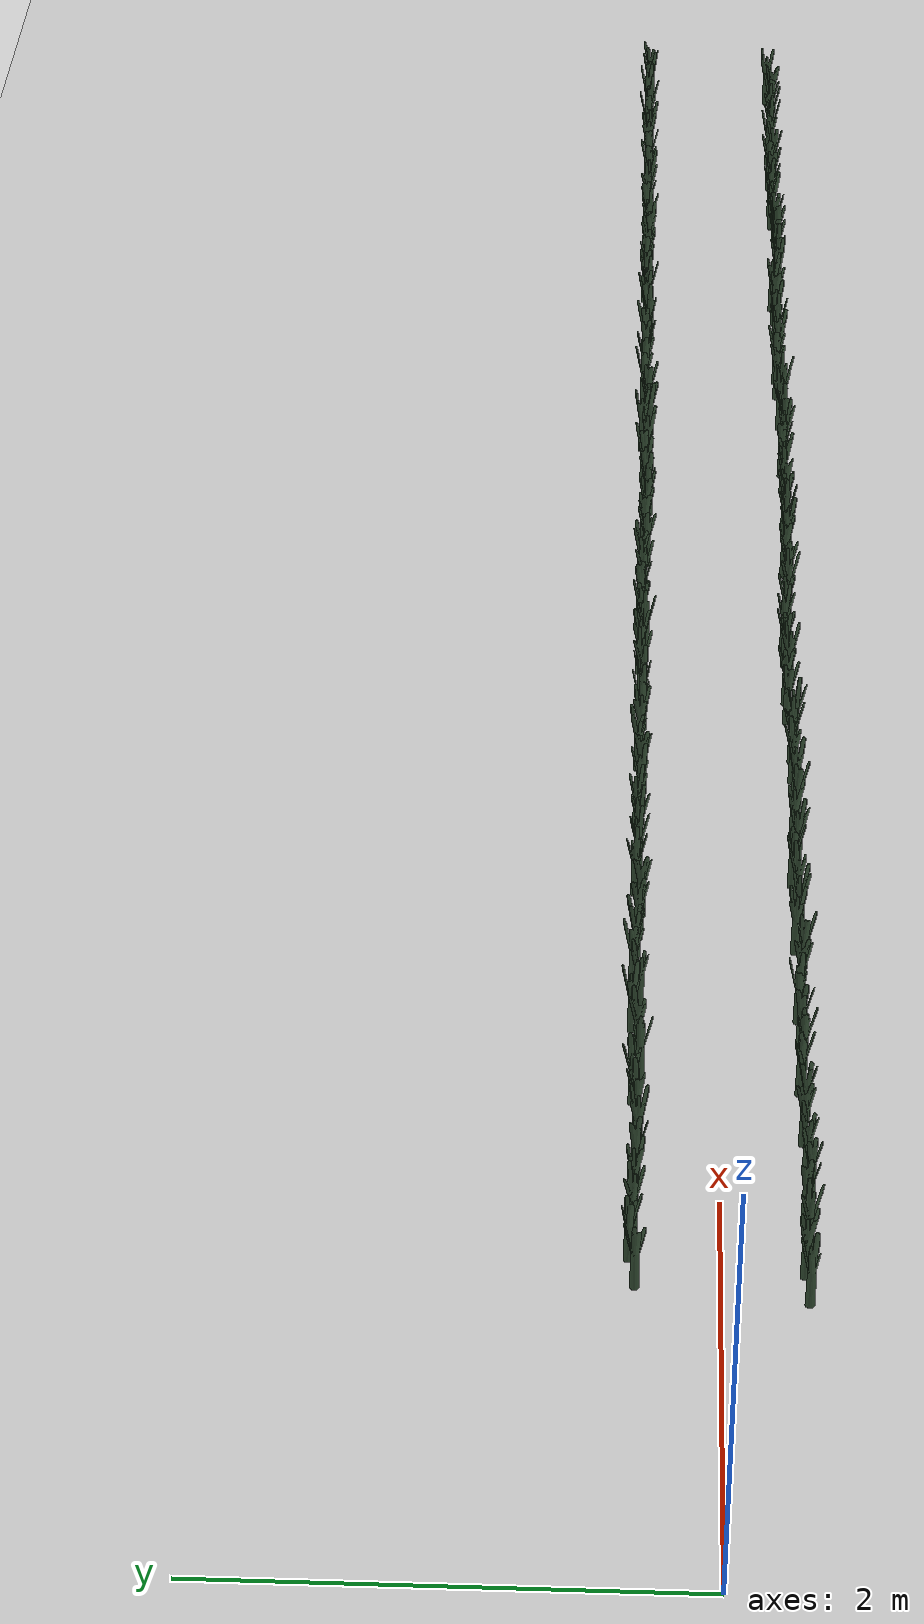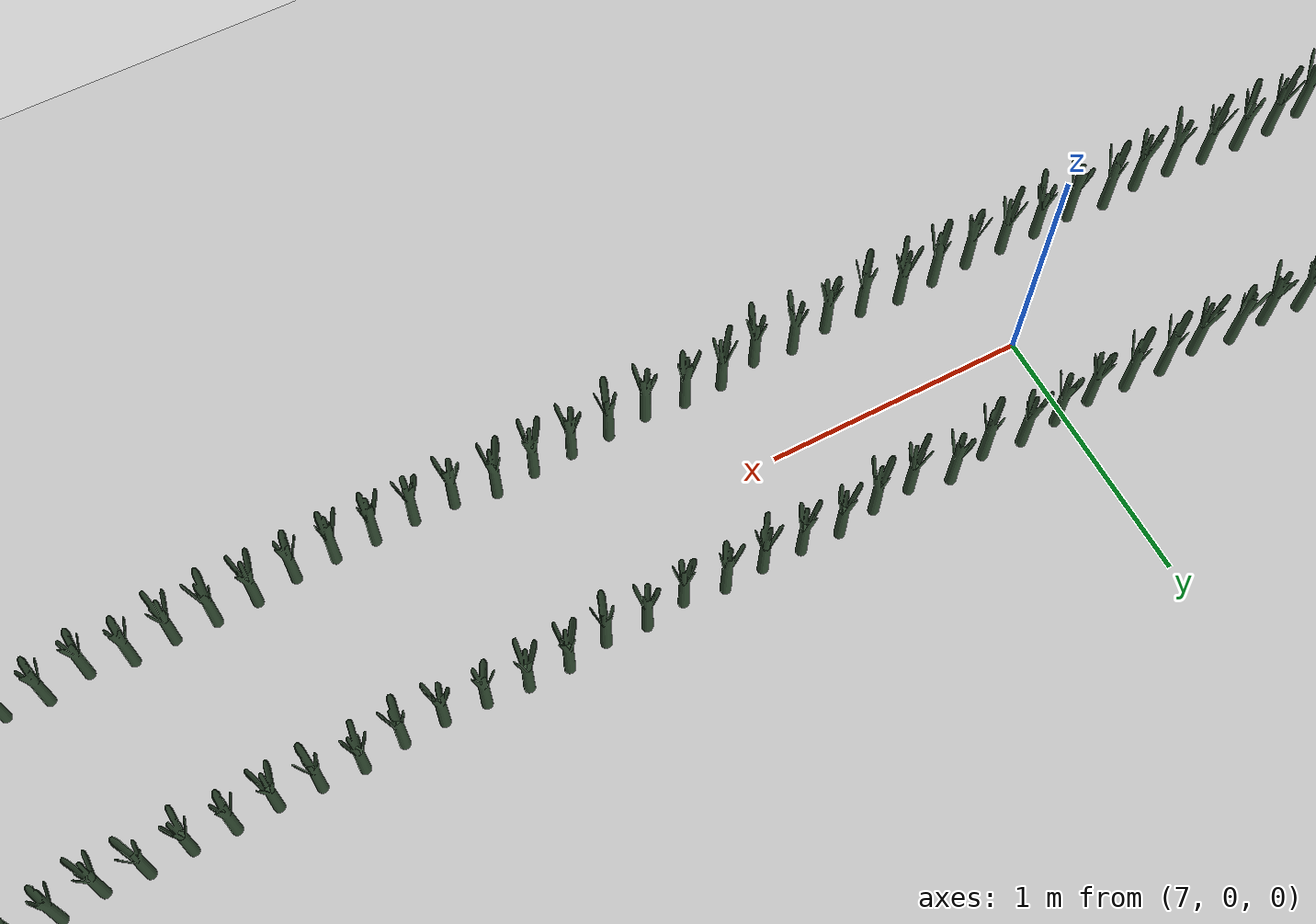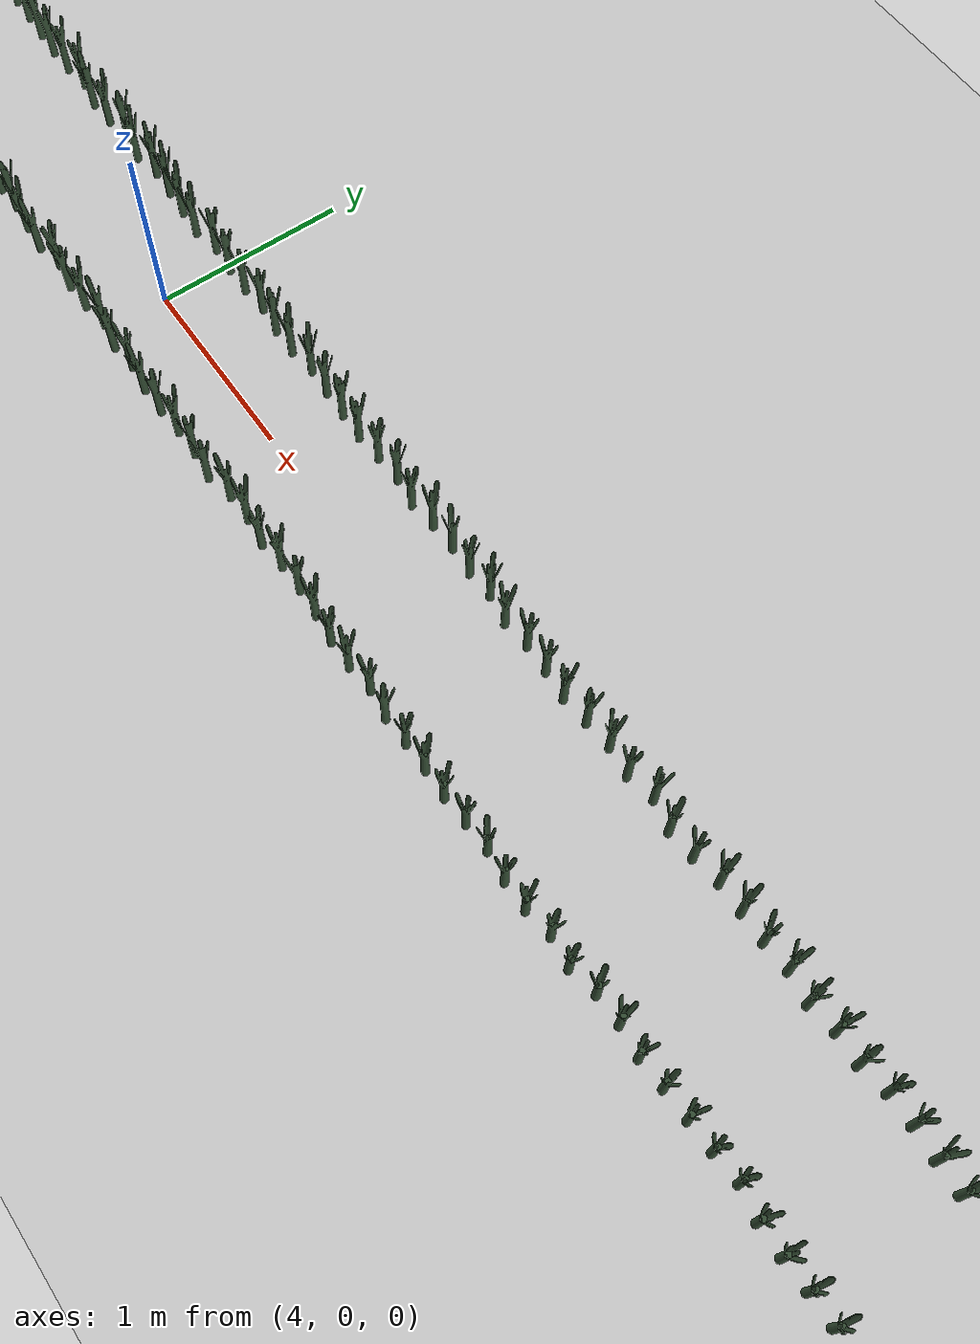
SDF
<sdf version="1.6">
 <world name="default">
  <light name="sun" type="directional">
   <pose>0 0 10 0 -0 0</pose>
   <diffuse>0.5 0.5 0.5 1</diffuse>
   <specular>0.1 0.1 0.1 1</specular>
   <attenuation>
    <range>1000</range>
    <constant>0.9</constant>
    <linear>0.01</linear>
    <quadratic>0.001</quadratic>
   </attenuation>
   <direction>0.9 0.5 -1</direction>
  </light>
  <scene><background>130 200 255 1</background><ambient>130 140 140 1</ambient></scene>
  <include><uri>model://dirt_plane</uri></include>
  <include><uri>model://Leek</uri><pose>1.500000 0.340419 0.15 0 0 -86.226866</pose><static>0</static></include>
  <include><uri>model://Leek</uri><pose>1.650000 0.366421 0.15 0 0 147.786815</pose><static>0</static></include>
  <include><uri>model://Leek</uri><pose>1.800000 0.352654 0.15 0 0 23.890088</pose><static>0</static></include>
  <include><uri>model://Leek</uri><pose>1.950000 0.349032 0.15 0 0 -8.709346</pose><static>0</static></include>
  <include><uri>model://Leek</uri><pose>2.100000 0.342613 0.15 0 0 -66.486384</pose><static>0</static></include>
  <include>
   <uri>model://Leek</uri>
   <pose>2.250000 0.335938 0.15 0 0 -126.556728</pose>
   <static>0</static>
  </include>
  <include><uri>model://Leek</uri><pose>2.400000 0.340957 0.15 0 0 -81.386220</pose><static>0</static></include>
  <include><uri>model://Leek</uri><pose>2.550000 0.359812 0.15 0 0 88.308858</pose><static>0</static></include>
  <include>
   <uri>model://Leek</uri>
   <pose>2.700000 0.332181 0.15 0 0 -160.366901</pose>
   <static>0</static>
  </include>
  <include><uri>model://Leek</uri><pose>2.850000 0.340988 0.15 0 0 -81.103529</pose><static>0</static></include>
  <include><uri>model://Leek</uri><pose>3.000000 0.368100 0.15 0 0 162.902319</pose><static>0</static></include>
  <include><uri>model://Leek</uri><pose>3.150000 0.338921 0.15 0 0 -99.714993</pose><static>0</static></include>
  <include><uri>model://Leek</uri><pose>3.300000 0.366898 0.15 0 0 152.084495</pose><static>0</static></include>
  <include><uri>model://Leek</uri><pose>3.450000 0.357789 0.15 0 0 70.102363</pose><static>0</static></include>
  <include><uri>model://Leek</uri><pose>3.600000 0.346779 0.15 0 0 -28.993297</pose><static>0</static></include>
  <include>
   <uri>model://Leek</uri>
   <pose>3.750000 0.336300 0.15 0 0 -123.302862</pose>
   <static>0</static>
  </include>
  <include><uri>model://Leek</uri><pose>3.900000 0.364470 0.15 0 0 130.232264</pose><static>0</static></include>
  <include><uri>model://Leek</uri><pose>4.050000 0.353276 0.15 0 0 29.484671</pose><static>0</static></include>
  <include><uri>model://Leek</uri><pose>4.200000 0.351169 0.15 0 0 10.521040</pose><static>0</static></include>
  <include><uri>model://Leek</uri><pose>4.350000 0.362327 0.15 0 0 110.944592</pose><static>0</static></include>
  <include><uri>model://Leek</uri><pose>4.500000 0.345767 0.15 0 0 -38.099989</pose><static>0</static></include>
  <include><uri>model://Leek</uri><pose>4.650000 0.342582 0.15 0 0 -66.758920</pose><static>0</static></include>
  <include><uri>model://Leek</uri><pose>4.800000 0.361963 0.15 0 0 107.666447</pose><static>0</static></include>
  <include><uri>model://Leek</uri><pose>4.950000 0.352679 0.15 0 0 24.115165</pose><static>0</static></include>
  <include><uri>model://Leek</uri><pose>5.100000 0.345795 0.15 0 0 -37.843429</pose><static>0</static></include>
  <include><uri>model://Leek</uri><pose>5.250000 0.340217 0.15 0 0 -88.044368</pose><static>0</static></include>
  <include><uri>model://Leek</uri><pose>5.400000 0.352646 0.15 0 0 23.815229</pose><static>0</static></include>
  <include><uri>model://Leek</uri><pose>5.550000 0.361056 0.15 0 0 99.507198</pose><static>0</static></include>
  <include>
   <uri>model://Leek</uri>
   <pose>5.700000 0.338654 0.15 0 0 -102.110928</pose>
   <static>0</static>
  </include>
  <include><uri>model://Leek</uri><pose>5.850000 0.357208 0.15 0 0 64.867580</pose><static>0</static></include>
  <include><uri>model://Leek</uri><pose>6.000000 0.362176 0.15 0 0 109.580599</pose><static>0</static></include>
  <include><uri>model://Leek</uri><pose>6.150000 0.351253 0.15 0 0 11.273023</pose><static>0</static></include>
  <include><uri>model://Leek</uri><pose>6.300000 0.361247 0.15 0 0 101.224298</pose><static>0</static></include>
  <include>
   <uri>model://Leek</uri>
   <pose>6.450000 0.335501 0.15 0 0 -130.494007</pose>
   <static>0</static>
  </include>
  <include><uri>model://Leek</uri><pose>6.600000 0.351102 0.15 0 0 9.919800</pose><static>0</static></include>
  <include><uri>model://Leek</uri><pose>6.750000 0.344816 0.15 0 0 -46.654102</pose><static>0</static></include>
  <include>
   <uri>model://Leek</uri>
   <pose>6.900000 0.331127 0.15 0 0 -169.855525</pose>
   <static>0</static>
  </include>
  <include><uri>model://Leek</uri><pose>7.050000 0.345741 0.15 0 0 -38.335267</pose><static>0</static></include>
  <include><uri>model://Leek</uri><pose>7.200000 0.357810 0.15 0 0 70.293931</pose><static>0</static></include>
  <include><uri>model://Leek</uri><pose>7.350000 0.339256 0.15 0 0 -96.692942</pose><static>0</static></include>
  <include><uri>model://Leek</uri><pose>7.500000 0.368071 0.15 0 0 162.635124</pose><static>0</static></include>
  <include>
   <uri>model://Leek</uri>
   <pose>7.650000 0.331361 0.15 0 0 -167.753109</pose>
   <static>0</static>
  </include>
  <include><uri>model://Leek</uri><pose>7.800000 0.342001 0.15 0 0 -71.991726</pose><static>0</static></include>
  <include><uri>model://Leek</uri><pose>7.950000 0.363431 0.15 0 0 120.877206</pose><static>0</static></include>
  <include><uri>model://Leek</uri><pose>8.100000 0.357851 0.15 0 0 70.658447</pose><static>0</static></include>
  <include><uri>model://Leek</uri><pose>8.250000 0.354478 0.15 0 0 40.300172</pose><static>0</static></include>
  <include><uri>model://Leek</uri><pose>8.400000 0.361302 0.15 0 0 101.722005</pose><static>0</static></include>
  <include>
   <uri>model://Leek</uri>
   <pose>8.550000 0.337435 0.15 0 0 -113.087842</pose>
   <static>0</static>
  </include>
  <include><uri>model://Leek</uri><pose>8.700000 0.357624 0.15 0 0 68.612565</pose><static>0</static></include>
  <include><uri>model://Leek</uri><pose>8.850000 0.345617 0.15 0 0 -39.447740</pose><static>0</static></include>
  <include><uri>model://Leek</uri><pose>9.000000 0.368560 0.15 0 0 167.040291</pose><static>0</static></include>
  <include><uri>model://Leek</uri><pose>9.150000 0.366426 0.15 0 0 147.833065</pose><static>0</static></include>
  <include><uri>model://Leek</uri><pose>9.300000 0.352172 0.15 0 0 19.549170</pose><static>0</static></include>
  <include><uri>model://Leek</uri><pose>9.450000 0.343657 0.15 0 0 -57.089756</pose><static>0</static></include>
  <include><uri>model://Leek</uri><pose>9.600000 0.349799 0.15 0 0 -1.809454</pose><static>0</static></include>
  <include><uri>model://Leek</uri><pose>9.750000 0.367065 0.15 0 0 153.582010</pose><static>0</static></include>
  <include><uri>model://Leek</uri><pose>9.900000 0.359627 0.15 0 0 86.643672</pose><static>0</static></include>
  <include><uri>model://Leek</uri><pose>10.050000 0.353222 0.15 0 0 29.000962</pose><static>0</static></include>
  <include><uri>model://Leek</uri><pose>10.200000 0.359227 0.15 0 0 83.040025</pose><static>0</static></include>
  <include><uri>model://Leek</uri><pose>10.350000 0.357995 0.15 0 0 71.954572</pose><static>0</static></include>
  <include>
   <uri>model://Leek</uri>
   <pose>10.500000 0.363164 0.15 0 0 118.474024</pose>
   <static>0</static>
  </include>
  <include><uri>model://Leek</uri><pose>10.650000 0.353214 0.15 0 0 28.923558</pose><static>0</static></include>
  <include>
   <uri>model://Leek</uri>
   <pose>10.800000 0.369740 0.15 0 0 177.660503</pose>
   <static>0</static>
  </include>
  <include><uri>model://Leek</uri><pose>10.950000 0.354678 0.15 0 0 42.101178</pose><static>0</static></include>
  <include>
   <uri>model://Leek</uri>
   <pose>11.100000 0.368102 0.15 0 0 162.916232</pose>
   <static>0</static>
  </include>
  <include><uri>model://Leek</uri><pose>11.250000 0.356909 0.15 0 0 62.180318</pose><static>0</static></include>
  <include><uri>model://Leek</uri><pose>11.400000 0.355008 0.15 0 0 45.067560</pose><static>0</static></include>
  <include><uri>model://Leek</uri><pose>1.429190 -0.347250 0.15 0 0 24.751007</pose><static>0</static></include>
  <include>
   <uri>model://Leek</uri>
   <pose>1.579190 -0.331441 0.15 0 0 167.030179</pose>
   <static>0</static>
  </include>
  <include><uri>model://Leek</uri><pose>1.729190 -0.348763 0.15 0 0 11.133317</pose><static>0</static></include>
  <include><uri>model://Leek</uri><pose>1.879190 -0.340630 0.15 0 0 84.332877</pose><static>0</static></include>
  <include>
   <uri>model://Leek</uri>
   <pose>2.029190 -0.362445 0.15 0 0 -112.005833</pose>
   <static>0</static>
  </include>
  <include>
   <uri>model://Leek</uri>
   <pose>2.179190 -0.354107 0.15 0 0 -36.958870</pose>
   <static>0</static>
  </include>
  <include><uri>model://Leek</uri><pose>2.329190 -0.342070 0.15 0 0 71.372228</pose><static>0</static></include>
  <include>
   <uri>model://Leek</uri>
   <pose>2.479190 -0.354083 0.15 0 0 -36.747233</pose>
   <static>0</static>
  </include>
  <include>
   <uri>model://Leek</uri>
   <pose>2.629190 -0.334993 0.15 0 0 135.064523</pose>
   <static>0</static>
  </include>
  <include><uri>model://Leek</uri><pose>2.779190 -0.349658 0.15 0 0 3.078447</pose><static>0</static></include>
  <include><uri>model://Leek</uri><pose>2.929190 -0.344827 0.15 0 0 46.558584</pose><static>0</static></include>
  <include>
   <uri>model://Leek</uri>
   <pose>3.079190 -0.336765 0.15 0 0 119.112935</pose>
   <static>0</static>
  </include>
  <include>
   <uri>model://Leek</uri>
   <pose>3.229190 -0.353239 0.15 0 0 -29.155414</pose>
   <static>0</static>
  </include>
  <include>
   <uri>model://Leek</uri>
   <pose>3.379190 -0.363589 0.15 0 0 -122.297957</pose>
   <static>0</static>
  </include>
  <include>
   <uri>model://Leek</uri>
   <pose>3.529190 -0.335442 0.15 0 0 131.019009</pose>
   <static>0</static>
  </include>
  <include>
   <uri>model://Leek</uri>
   <pose>3.679190 -0.357237 0.15 0 0 -65.133005</pose>
   <static>0</static>
  </include>
  <include>
   <uri>model://Leek</uri>
   <pose>3.829190 -0.352046 0.15 0 0 -18.410127</pose>
   <static>0</static>
  </include>
  <include>
   <uri>model://Leek</uri>
   <pose>3.979190 -0.331495 0.15 0 0 166.544714</pose>
   <static>0</static>
  </include>
  <include>
   <uri>model://Leek</uri>
   <pose>4.129190 -0.358618 0.15 0 0 -77.558503</pose>
   <static>0</static>
  </include>
  <include><uri>model://Leek</uri><pose>4.279190 -0.342603 0.15 0 0 66.571437</pose><static>0</static></include>
  <include>
   <uri>model://Leek</uri>
   <pose>4.429190 -0.361498 0.15 0 0 -103.485714</pose>
   <static>0</static>
  </include>
  <include>
   <uri>model://Leek</uri>
   <pose>4.579190 -0.359849 0.15 0 0 -88.645411</pose>
   <static>0</static>
  </include>
  <include><uri>model://Leek</uri><pose>4.729190 -0.349955 0.15 0 0 0.406518</pose><static>0</static></include>
  <include><uri>model://Leek</uri><pose>4.879190 -0.349481 0.15 0 0 4.669282</pose><static>0</static></include>
  <include>
   <uri>model://Leek</uri>
   <pose>5.029190 -0.365578 0.15 0 0 -140.204286</pose>
   <static>0</static>
  </include>
  <include>
   <uri>model://Leek</uri>
   <pose>5.179190 -0.333562 0.15 0 0 147.939085</pose>
   <static>0</static>
  </include>
  <include>
   <uri>model://Leek</uri>
   <pose>5.329190 -0.330933 0.15 0 0 171.605648</pose>
   <static>0</static>
  </include>
  <include><uri>model://Leek</uri><pose>5.479190 -0.348725 0.15 0 0 11.478005</pose><static>0</static></include>
  <include>
   <uri>model://Leek</uri>
   <pose>5.629190 -0.333041 0.15 0 0 152.629982</pose>
   <static>0</static>
  </include>
  <include>
   <uri>model://Leek</uri>
   <pose>5.779190 -0.332080 0.15 0 0 161.279686</pose>
   <static>0</static>
  </include>
  <include><uri>model://Leek</uri><pose>5.929190 -0.341403 0.15 0 0 77.372090</pose><static>0</static></include>
  <include>
   <uri>model://Leek</uri>
   <pose>6.079190 -0.357136 0.15 0 0 -64.224500</pose>
   <static>0</static>
  </include>
  <include>
   <uri>model://Leek</uri>
   <pose>6.229190 -0.359615 0.15 0 0 -86.536003</pose>
   <static>0</static>
  </include>
  <include><uri>model://Leek</uri><pose>6.379190 -0.344010 0.15 0 0 53.913345</pose><static>0</static></include>
  <include>
   <uri>model://Leek</uri>
   <pose>6.529190 -0.364042 0.15 0 0 -126.376268</pose>
   <static>0</static>
  </include>
  <include>
   <uri>model://Leek</uri>
   <pose>6.679190 -0.357863 0.15 0 0 -70.770283</pose>
   <static>0</static>
  </include>
  <include>
   <uri>model://Leek</uri>
   <pose>6.829190 -0.358858 0.15 0 0 -79.720415</pose>
   <static>0</static>
  </include>
  <include>
   <uri>model://Leek</uri>
   <pose>6.979190 -0.363223 0.15 0 0 -119.008285</pose>
   <static>0</static>
  </include>
  <include>
   <uri>model://Leek</uri>
   <pose>7.129190 -0.355170 0.15 0 0 -46.533995</pose>
   <static>0</static>
  </include>
  <include><uri>model://Leek</uri><pose>7.279190 -0.349003 0.15 0 0 8.975350</pose><static>0</static></include>
  <include>
   <uri>model://Leek</uri>
   <pose>7.429190 -0.368390 0.15 0 0 -165.513562</pose>
   <static>0</static>
  </include>
  <include>
   <uri>model://Leek</uri>
   <pose>7.579190 -0.368840 0.15 0 0 -169.562686</pose>
   <static>0</static>
  </include>
  <include><uri>model://Leek</uri><pose>7.729190 -0.348742 0.15 0 0 11.318266</pose><static>0</static></include>
  <include>
   <uri>model://Leek</uri>
   <pose>7.879190 -0.368312 0.15 0 0 -164.804917</pose>
   <static>0</static>
  </include>
  <include><uri>model://Leek</uri><pose>8.029190 -0.339286 0.15 0 0 96.428046</pose><static>0</static></include>
  <include>
   <uri>model://Leek</uri>
   <pose>8.179190 -0.336588 0.15 0 0 120.703765</pose>
   <static>0</static>
  </include>
  <include>
   <uri>model://Leek</uri>
   <pose>8.329190 -0.355671 0.15 0 0 -51.040946</pose>
   <static>0</static>
  </include>
  <include><uri>model://Leek</uri><pose>8.479190 -0.348094 0.15 0 0 17.154875</pose><static>0</static></include>
  <include><uri>model://Leek</uri><pose>8.629190 -0.345187 0.15 0 0 43.313385</pose><static>0</static></include>
  <include><uri>model://Leek</uri><pose>8.779190 -0.340527 0.15 0 0 85.255178</pose><static>0</static></include>
  <include>
   <uri>model://Leek</uri>
   <pose>8.929190 -0.330022 0.15 0 0 179.800711</pose>
   <static>0</static>
  </include>
  <include>
   <uri>model://Leek</uri>
   <pose>9.079190 -0.362631 0.15 0 0 -113.677537</pose>
   <static>0</static>
  </include>
  <include>
   <uri>model://Leek</uri>
   <pose>9.229190 -0.368846 0.15 0 0 -169.611237</pose>
   <static>0</static>
  </include>
  <include>
   <uri>model://Leek</uri>
   <pose>9.379190 -0.363782 0.15 0 0 -124.041185</pose>
   <static>0</static>
  </include>
  <include>
   <uri>model://Leek</uri>
   <pose>9.529190 -0.365874 0.15 0 0 -142.863337</pose>
   <static>0</static>
  </include>
  <include>
   <uri>model://Leek</uri>
   <pose>9.679190 -0.361751 0.15 0 0 -105.761303</pose>
   <static>0</static>
  </include>
  <include><uri>model://Leek</uri><pose>9.829190 -0.342593 0.15 0 0 66.665157</pose><static>0</static></include>
  <include><uri>model://Leek</uri><pose>9.979190 -0.340431 0.15 0 0 86.123025</pose><static>0</static></include>
  <include>
   <uri>model://Leek</uri>
   <pose>10.129190 -0.345422 0.15 0 0 41.200903</pose>
   <static>0</static>
  </include>
  <include>
   <uri>model://Leek</uri>
   <pose>10.279190 -0.337283 0.15 0 0 114.451813</pose>
   <static>0</static>
  </include>
  <include>
   <uri>model://Leek</uri>
   <pose>10.429190 -0.366630 0.15 0 0 -149.670451</pose>
   <static>0</static>
  </include>
  <include>
   <uri>model://Leek</uri>
   <pose>10.579190 -0.338678 0.15 0 0 101.893520</pose>
   <static>0</static>
  </include>
  <include>
   <uri>model://Leek</uri>
   <pose>10.729190 -0.353680 0.15 0 0 -33.118701</pose>
   <static>0</static>
  </include>
  <include>
   <uri>model://Leek</uri>
   <pose>10.879190 -0.355059 0.15 0 0 -45.533887</pose>
   <static>0</static>
  </include>
  <include>
   <uri>model://Leek</uri>
   <pose>11.029190 -0.360330 0.15 0 0 -92.974061</pose>
   <static>0</static>
  </include>
  <include>
   <uri>model://Leek</uri>
   <pose>11.179190 -0.367216 0.15 0 0 -154.945518</pose>
   <static>0</static>
  </include>
  <include>
   <uri>model://Leek</uri>
   <pose>11.329190 -0.336140 0.15 0 0 124.740953</pose>
   <static>0</static>
  </include>
 </world>
</sdf>

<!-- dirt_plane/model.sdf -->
<sdf version="1.4">
<model name="dirt_plane">
  <static>true</static>
    <link name="link">
      <collision name="collision">
        <geometry>
          <plane>
            <normal>0 0 1</normal>
            <size>100 100</size>
          </plane>
        </geometry>
        <surface>
          <friction>
            <ode>
              <mu>100</mu>
              <mu2>50</mu2>
            </ode>
          </friction>
        </surface>
      </collision>
      <visual name="visual">
        <cast_shadows>false</cast_shadows>
        <geometry>
          <plane>
            <normal>0 0 1</normal>
            <size>100 100</size>
          </plane>
        </geometry>
        <material>
          <script>
            <uri>model://ground_plane/materials/scripts/my_ground_plane.material</uri>
            <uri>model://ground_plane/materials/textures</uri>
            <name>my_ground_plane/Dirt</name>
          </script>
        </material>
      </visual>
    </link>
  </model>
</sdf>

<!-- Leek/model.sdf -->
<sdf version='1.6'>
  <model name='Leek'>
    <link name='link'>
      <pose frame=''>0 0 0 0 -0 0</pose>
      <inertial>
        <mass>1</mass>
        <inertia>
          <ixx>0.145833</ixx>
          <ixy>0</ixy>
          <ixz>0</ixz>
          <iyy>0.145833</iyy>
          <iyz>0</iyz>
          <izz>0.125</izz>
        </inertia>
        <pose frame=''>0 0 0 0 -0 0</pose>
      </inertial>
      <self_collide>0</self_collide>
      <kinematic>0</kinematic>
      <gravity>1</gravity>
      <visual name='visual'>
        <geometry>
          <mesh>
            <uri>model://Leek/Poireau.dae</uri>
            <scale>1 1 1</scale>
          </mesh>
        </geometry>
        <material>
          <script>
            <name>Gazebo/Grey</name>
            <uri>file://media/materials/scripts/gazebo.material</uri>
          </script>
          <ambient>0.3 0.7 0.4 0</ambient>
          <diffuse>0.2 0.3 0.2 0</diffuse>
          <specular>0 0 0 1</specular>
          <emissive>0 0 0 1</emissive>
          <shader type='vertex'>
            <normal_map>__default__</normal_map>
          </shader>
        </material>
        <pose frame=''>0 0 -0.08 0 -0 0</pose>
        <cast_shadows>1</cast_shadows>
        <transparency>0</transparency>
      </visual>
      <collision name='collision'>
        <laser_retro>0</laser_retro>
        <max_contacts>10</max_contacts>
        <pose frame=''>0 0 0 0 -0 0</pose>
        <geometry>
          <cylinder>
            <radius>0.02</radius>
            <length>0.25</length>
          </cylinder>
        </geometry>
        <surface>
          <friction>
            <ode>
              <mu>1</mu>
              <mu2>1</mu2>
              <fdir1>0 0 0</fdir1>
              <slip1>0</slip1>
              <slip2>0</slip2>
            </ode>
            <torsional>
              <coefficient>1</coefficient>
              <patch_radius>0</patch_radius>
              <surface_radius>0</surface_radius>
              <use_patch_radius>1</use_patch_radius>
              <ode>
                <slip>0</slip>
              </ode>
            </torsional>
          </friction>
          <bounce>
            <restitution_coefficient>0</restitution_coefficient>
            <threshold>1e+06</threshold>
          </bounce>
          <contact>
            <collide_without_contact>0</collide_without_contact>
            <collide_without_contact_bitmask>1</collide_without_contact_bitmask>
            <collide_bitmask>1</collide_bitmask>
            <ode>
              <soft_cfm>0</soft_cfm>
              <soft_erp>0.2</soft_erp>
              <kp>1e+13</kp>
              <kd>1</kd>
              <max_vel>0.01</max_vel>
              <min_depth>0</min_depth>
            </ode>
            <bullet>
              <split_impulse>1</split_impulse>
              <split_impulse_penetration_threshold>-0.01</split_impulse_penetration_threshold>
              <soft_cfm>0</soft_cfm>
              <soft_erp>0.2</soft_erp>
              <kp>1e+13</kp>
              <kd>1</kd>
            </bullet>
          </contact>
        </surface>
      </collision>
    </link>
    <static>0</static>
    <allow_auto_disable>1</allow_auto_disable>
  </model>
</sdf>
